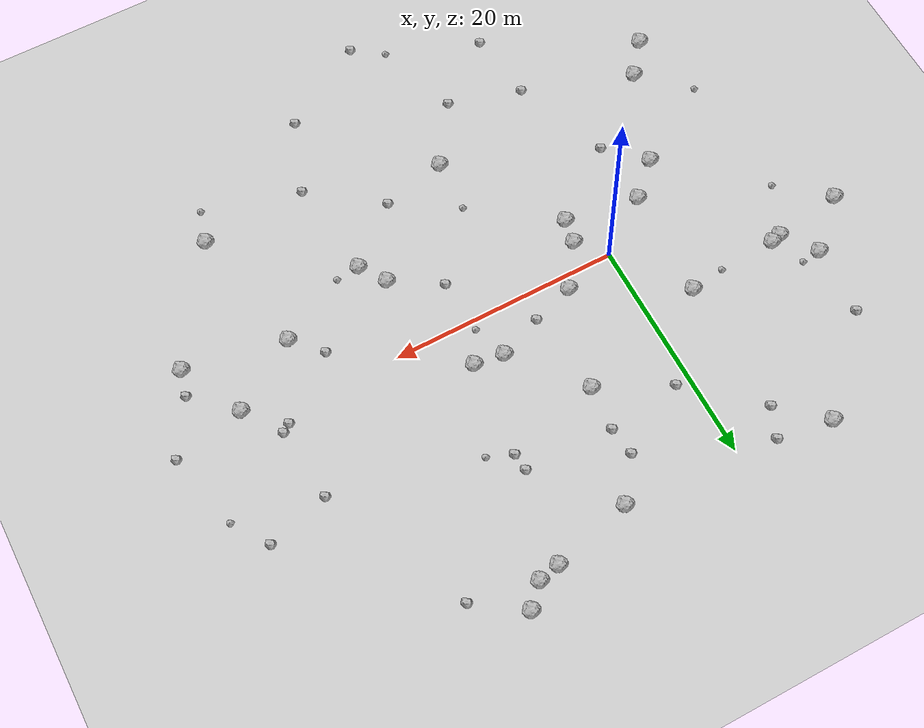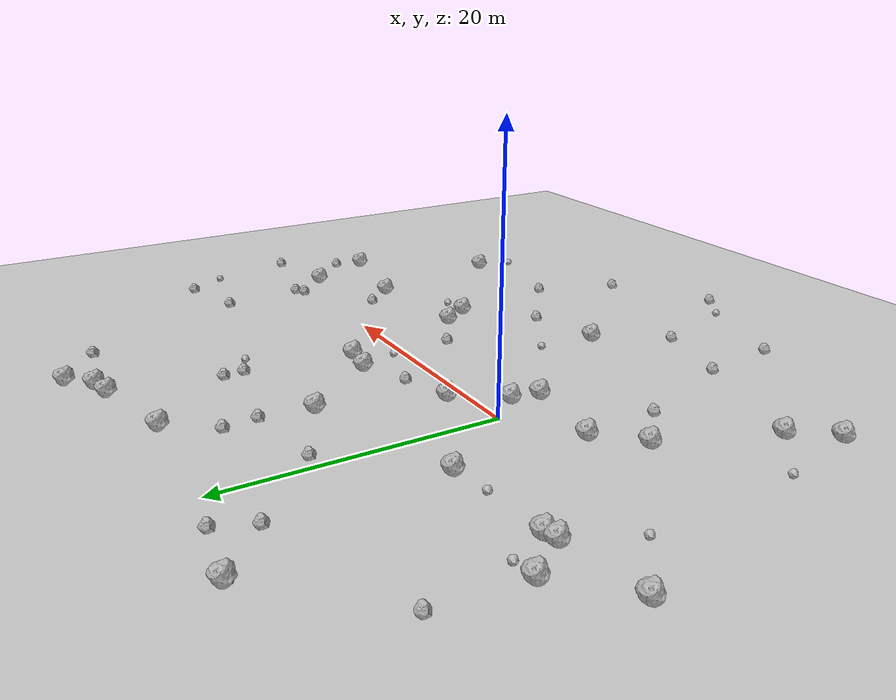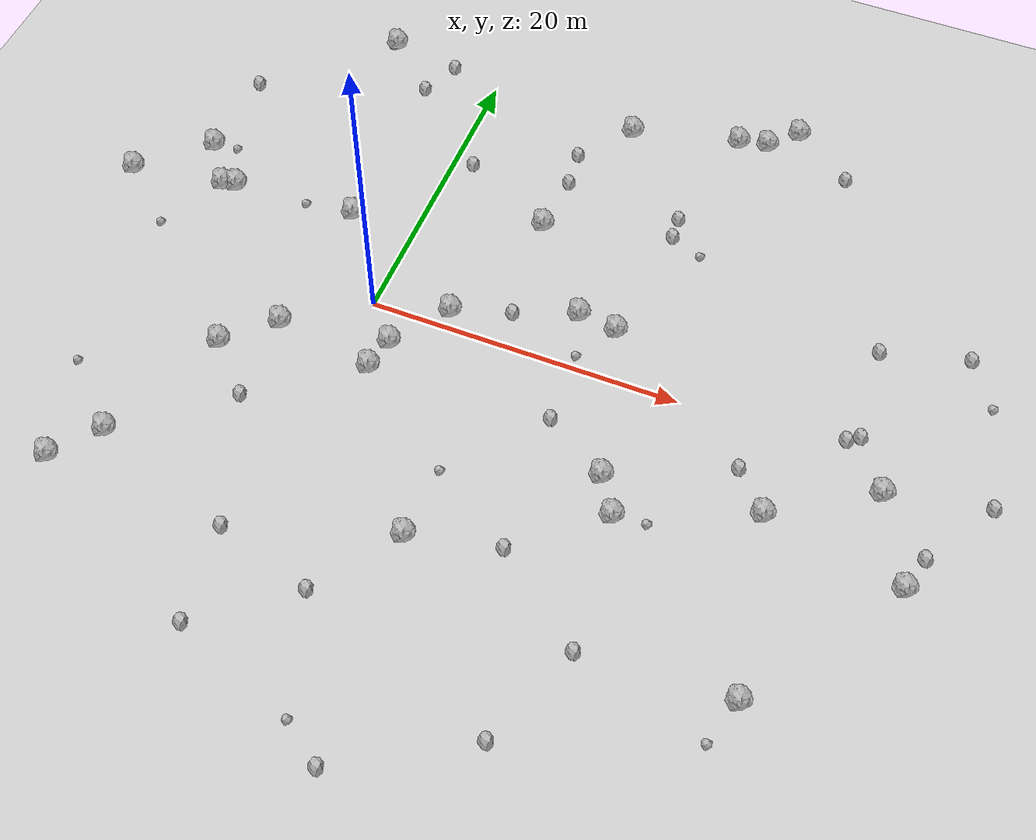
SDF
<sdf version="1.6">
 <world name="default">
  <include><uri>model://custom_ground</uri></include>
  <include><uri>model://sun</uri></include>
  <model name="rock1_0_0">
   <include><uri>model://rock1</uri><pose>1.7441989658180965 -4.541443888883222 0.5 0 0 0</pose></include>
  </model>
  <model name="rock1_0_1">
   <include><uri>model://rock1</uri><pose>-13.404597002256825 5.324897894672709 0.5 0 0 0</pose></include>
  </model>
  <model name="rock1_0_2">
   <include><uri>model://rock1</uri><pose>12.20609081366284 3.955230214134936 0.5 0 0 0</pose></include>
  </model>
  <model name="rock1_0_3">
   <include><uri>model://rock1</uri><pose>-4.752510207070193 -3.5096527414687557 0.5 0 0 0</pose></include>
  </model>
  <model name="rock1_0_4">
   <include><uri>model://rock1</uri><pose>16.968787575839727 21.545141732129025 0.5 0 0 0</pose></include>
  </model>
  <model name="rock1_0_5">
   <include><uri>model://rock1</uri><pose>7.443427374723054 9.911052004515241 0.5 0 0 0</pose></include>
  </model>
  <model name="rock1_0_6">
   <include><uri>model://rock1</uri><pose>-4.368428407281986 6.200212980525031 0.5 0 0 0</pose></include>
  </model>
  <model name="rock1_0_7">
   <include><uri>model://rock1</uri><pose>35.851268228480784 -7.289535602656056 0.5 0 0 0</pose></include>
  </model>
  <model name="rock1_0_8">
   <include><uri>model://rock1</uri><pose>19.113921167531373 -8.91072955189243 0.5 0 0 0</pose></include>
  </model>
  <model name="rock1_0_9">
   <include><uri>model://rock1</uri><pose>20.51355270095273 23.693787663201675 0.5 0 0 0</pose></include>
  </model>
  <model name="rock1_0_10">
   <include><uri>model://rock1</uri><pose>4.674990438943599 1.2339847448792156 0.5 0 0 0</pose></include>
  </model>
  <model name="rock1_0_11">
   <include><uri>model://rock1</uri><pose>33.077464467962635 -1.7090198296084331 0.5 0 0 0</pose></include>
  </model>
  <model name="rock1_0_12">
   <include><uri>model://rock1</uri><pose>29.36429832266817 -17.192968930137148 0.5 0 0 0</pose></include>
  </model>
  <model name="rock1_0_13">
   <include><uri>model://rock1</uri><pose>-13.041767352217501 -17.39051808808277 0.5 0 0 0</pose></include>
  </model>
  <model name="rock1_0_14">
   <include><uri>model://rock1</uri><pose>18.826650474783257 21.959737409667916 0.5 0 0 0</pose></include>
  </model>
  <model name="rock1_0_15">
   <include><uri>model://rock1</uri><pose>-19.513036122775866 4.410060382286311 0.5 0 0 0</pose></include>
  </model>
  <model name="rock1_0_16">
   <include><uri>model://rock1</uri><pose>-10.80904108907301 -14.55349985794777 0.5 0 0 0</pose></include>
  </model>
  <model name="rock1_0_17">
   <include><uri>model://rock1</uri><pose>-7.567404552320953 -6.258959112814068 0.5 0 0 0</pose></include>
  </model>
  <model name="rock1_0_18">
   <include><uri>model://rock1</uri><pose>10.06097732312016 19.80940463895466 0.5 0 0 0</pose></include>
  </model>
  <model name="rock1_0_19">
   <include><uri>model://rock1</uri><pose>-8.110701095564888 21.555632092715 0.5 0 0 0</pose></include>
  </model>
  <model name="rock1_0_20">
   <include><uri>model://rock1</uri><pose>-12.512990543340116 5.569673976554576 0.5 0 0 0</pose></include>
  </model>
  <model name="rock1_0_21">
   <include><uri>model://rock1</uri><pose>-15.503592642710009 8.203031752842449 0.5 0 0 0</pose></include>
  </model>
  <model name="rock1_0_22">
   <include><uri>model://rock1</uri><pose>2.1541461405173976 -2.385737802782952 0.5 0 0 0</pose></include>
  </model>
  <model name="rock1_0_23">
   <include><uri>model://rock1</uri><pose>14.777425246217376 3.5931416034266164 0.5 0 0 0</pose></include>
  </model>
  <model name="rock1_0_24">
   <include><uri>model://rock1</uri><pose>17.609374279479006 -6.605129817921679 0.5 0 0 0</pose></include>
  </model>
  <model name="rock1_0_25">
   <include><uri>model://rock1</uri><pose>27.106305291632104 -5.616778246182172 0.5 0 0 0</pose></include>
  </model>
  <model name="rock1_0_26">
   <include><uri>model://rock1</uri><pose>8.582283861626781 -14.519798148456966 0.5 0 0 0</pose></include>
  </model>
  <model name="rock2_0_0">
   <include><uri>model://rock2</uri><pose>13.439247718313666 -4.038057373987609 0.3 0 0 0</pose></include>
  </model>
  <model name="rock2_0_1">
   <include><uri>model://rock2</uri><pose>30.1526163855251 1.0605685662575297 0.3 0 0 0</pose></include>
  </model>
  <model name="rock2_0_2">
   <include><uri>model://rock2</uri><pose>36.45380897527731 -5.030456786254881 0.3 0 0 0</pose></include>
  </model>
  <model name="rock2_0_3">
   <include><uri>model://rock2</uri><pose>-0.4680137944375993 -24.18405938838902 0.3 0 0 0</pose></include>
  </model>
  <model name="rock2_0_4">
   <include><uri>model://rock2</uri><pose>-4.471646086975472 18.155136783271296 0.3 0 0 0</pose></include>
  </model>
  <model name="rock2_0_5">
   <include><uri>model://rock2</uri><pose>17.750754326667995 -24.351055277342127 0.3 0 0 0</pose></include>
  </model>
  <model name="rock2_0_6">
   <include><uri>model://rock2</uri><pose>14.207854688793617 -13.23853790098861 0.3 0 0 0</pose></include>
  </model>
  <model name="rock2_0_7">
   <include><uri>model://rock2</uri><pose>-4.494064473172889 -9.370045492627291 0.3 0 0 0</pose></include>
  </model>
  <model name="rock2_0_8">
   <include><uri>model://rock2</uri><pose>35.65860997187316 9.521984605721393 0.3 0 0 0</pose></include>
  </model>
  <model name="rock2_0_9">
   <include><uri>model://rock2</uri><pose>8.358292422337932 2.4484556313392076 0.3 0 0 0</pose></include>
  </model>
  <model name="rock2_0_10">
   <include><uri>model://rock2</uri><pose>1.280208281331376 12.94998698714916 0.3 0 0 0</pose></include>
  </model>
  <model name="rock2_0_11">
   <include><uri>model://rock2</uri><pose>-3.3872200268249237 20.79912559430919 0.3 0 0 0</pose></include>
  </model>
  <model name="rock2_0_12">
   <include><uri>model://rock2</uri><pose>24.52571408322514 20.849674806523538 0.3 0 0 0</pose></include>
  </model>
  <model name="rock2_0_13">
   <include><uri>model://rock2</uri><pose>7.750661332867097 13.808975743368435 0.3 0 0 0</pose></include>
  </model>
  <model name="rock2_0_14">
   <include><uri>model://rock2</uri><pose>10.113739902736853 -28.98634026870649 0.3 0 0 0</pose></include>
  </model>
  <model name="rock2_0_15">
   <include><uri>model://rock2</uri><pose>15.439533294924196 13.550077691359675 0.3 0 0 0</pose></include>
  </model>
  <model name="rock2_0_16">
   <include><uri>model://rock2</uri><pose>15.578526252415088 11.986212680449682 0.3 0 0 0</pose></include>
  </model>
  <model name="rock2_0_17">
   <include><uri>model://rock2</uri><pose>-15.227507929421103 14.334706564312881 0.3 0 0 0</pose></include>
  </model>
  <model name="rock2_0_18">
   <include><uri>model://rock2</uri><pose>30.2758815261108 8.01736432825669 0.3 0 0 0</pose></include>
  </model>
  <model name="rock2_0_19">
   <include><uri>model://rock2</uri><pose>20.144457134853297 -17.80134735558482 0.3 0 0 0</pose></include>
  </model>
  <model name="rock2_0_20">
   <include><uri>model://rock2</uri><pose>39.29643396346905 -0.3526473152272942 0.3 0 0 0</pose></include>
  </model>
  <model name="rock2_0_21">
   <include><uri>model://rock2</uri><pose>30.88455966667464 1.581086685748872 0.3 0 0 0</pose></include>
  </model>
  <model name="rock2_0_22">
   <include><uri>model://rock2</uri><pose>7.433258889965863 16.330302350566022 0.3 0 0 0</pose></include>
  </model>
  <model name="rock2_0_23">
   <include><uri>model://rock2</uri><pose>-1.2887203228571522 -17.913700428089655 0.3 0 0 0</pose></include>
  </model>
  <model name="rock2_0_24">
   <include><uri>model://rock2</uri><pose>5.021417103852933 -19.77521231129661 0.3 0 0 0</pose></include>
  </model>
  <model name="rock2_0_25">
   <include><uri>model://rock2</uri><pose>-8.284445007334806 21.443505467198264 0.3 0 0 0</pose></include>
  </model>
  <model name="rock2_0_26">
   <include><uri>model://rock2</uri><pose>24.87622872800553 -3.181413551128877 0.3 0 0 0</pose></include>
  </model>
  <model name="rock3_0_0">
   <include><uri>model://rock3</uri><pose>7.481856632211237 -27.185818372834422 0.2 0 0 0</pose></include>
  </model>
  <model name="rock3_0_1">
   <include><uri>model://rock3</uri><pose>37.66394863601921 6.412303019151267 0.2 0 0 0</pose></include>
  </model>
  <model name="rock3_0_2">
   <include><uri>model://rock3</uri><pose>21.150154536639825 -8.770187768782844 0.2 0 0 0</pose></include>
  </model>
  <model name="rock3_0_3">
   <include><uri>model://rock3</uri><pose>-13.909562473053311 8.352330755953943 0.2 0 0 0</pose></include>
  </model>
  <model name="rock3_0_4">
   <include><uri>model://rock3</uri><pose>-14.863604572323457 -10.819276891992715 0.2 0 0 0</pose></include>
  </model>
  <model name="rock3_0_5">
   <include><uri>model://rock3</uri><pose>28.526468773956253 -20.18954643881068 0.2 0 0 0</pose></include>
  </model>
  <model name="rock3_0_6">
   <include><uri>model://rock3</uri><pose>17.692348560668037 11.075514236516632 0.2 0 0 0</pose></include>
  </model>
  <model name="rock3_0_7">
   <include><uri>model://rock3</uri><pose>13.15327357339116 0.8208902313712443 0.2 0 0 0</pose></include>
  </model>
  <model name="rock3_0_8">
   <include><uri>model://rock3</uri><pose>-7.522878322050273 5.729892467095773 0.2 0 0 0</pose></include>
  </model>
  <model name="rock3_0_9">
   <include><uri>model://rock3</uri><pose>8.747061609098836 -9.868601824658413 0.2 0 0 0</pose></include>
  </model>
  <model name="rock3_0_10">
   <include><uri>model://rock3</uri><pose>-15.573297042432426 0.8364740547491039 0.2 0 0 0</pose></include>
  </model>
 </world>
</sdf>
